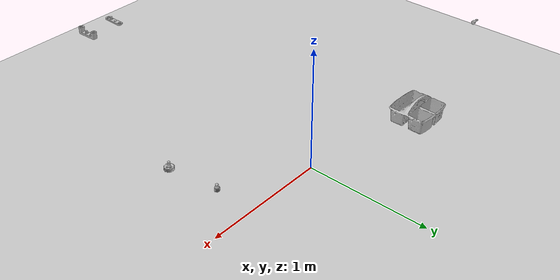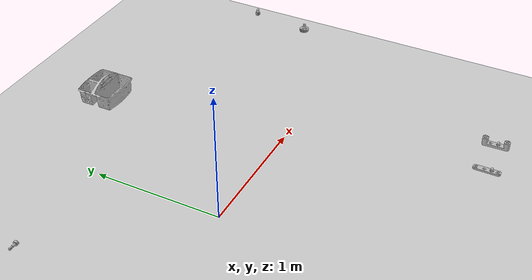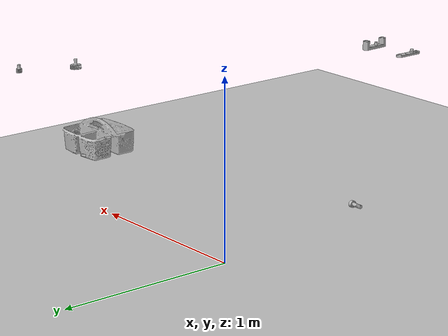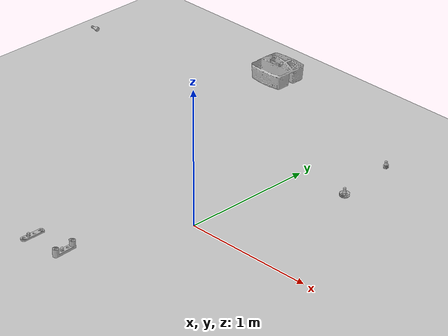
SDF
<sdf version="1.4">
 <world name="default">
  <model name="kit">
   <pose>-0.033010 0.804048 0.857000 0 0 0.01666</pose>
   <link name="link">
    <inertial>
     <mass>0.1</mass>
     <inertia><ixx>0.01</ixx><ixy>0</ixy><ixz>0</ixz><iyy>0.01</iyy><iyz>0</iyz><izz>0.01</izz></inertia>
    </inertial>
    <collision name="collision">
     <pose>0 0 -0.08 0 0 0</pose>
     <geometry><box><size>0.22 0.22 0.005</size></box></geometry>
     <surface>
      <friction><ode><mu>50.0</mu><mu2>50.0</mu2></ode></friction>
      <contact>
       <ode><kp>1000000.0</kp><kd>100.0</kd><max_vel>1.0</max_vel><min_depth>0.0005</min_depth></ode>
      </contact>
     </surface>
    </collision>
    <visual name="visual"><geometry><mesh><uri>model://Fetch_kit/meshes/kit7.stl</uri></mesh></geometry></visual>
   </link>
  </model>
  <include><uri>model://ground_plane</uri></include>
  <include><uri>model://sun</uri></include>
  <model name="gear_box_bottom">
   <pose>0.62 -1.64 0.797500 -1.570796 0 0.043728</pose>
   <link name="link">
    <inertial>
     <mass>0.1</mass>
     <inertia><ixx>0.01</ixx><ixy>0</ixy><ixz>0</ixz><iyy>0.01</iyy><iyz>0</iyz><izz>0.01</izz></inertia>
    </inertial>
    <collision name="collision">
     <geometry><box><size>0.035 0.046 0.18</size></box></geometry>
     <surface>
      <friction><ode><mu>50.0</mu><mu2>50.0</mu2></ode></friction>
      <contact>
       <ode><kp>1000000.0</kp><kd>100.0</kd><max_vel>1.0</max_vel><min_depth>0.0005</min_depth></ode>
      </contact>
     </surface>
    </collision>
    <visual name="visual">
     <geometry><mesh><uri>model://gearBox/meshes/gearBoxBottom_v3.stl</uri></mesh></geometry>
    </visual>
   </link>
  </model>
  <model name="gear_box_top">
   <pose>0.36 -1.66 0.792000 0 0 -1.57</pose>
   <link name="link">
    <inertial>
     <mass>0.1</mass>
     <inertia><ixx>0.01</ixx><ixy>0</ixy><ixz>0</ixz><iyy>0.01</iyy><iyz>0</iyz><izz>0.01</izz></inertia>
    </inertial>
    <collision name="collision">
     <pose>0 0 -0.01 0 0 0</pose>
     <geometry><box><size>0.18 0.046 0.015</size></box></geometry>
     <surface>
      <friction><ode><mu>50.0</mu><mu2>50.0</mu2></ode></friction>
      <contact>
       <ode><kp>1000000.0</kp><kd>100.0</kd><max_vel>1.0</max_vel><min_depth>0.0005</min_depth></ode>
      </contact>
     </surface>
    </collision>
    <visual name="visual">
     <geometry><mesh><uri>model://gearboxtop/meshes/gearBoxTop_v1.stl</uri></mesh></geometry>
    </visual>
   </link>
  </model>
  <model name="large_gear">
   <pose>1.32 0 0.803773 -0.003354 -0.002926 -0.850318</pose>
   <link name="link">
    <inertial>
     <mass>0.1</mass>
     <inertia><ixx>0.01</ixx><ixy>0</ixy><ixz>0</ixz><iyy>0.01</iyy><iyz>0</iyz><izz>0.01</izz></inertia>
    </inertial>
    <collision name="collision">
     <geometry><cylinder><radius>0.03</radius><length>0.058</length></cylinder></geometry>
     <surface>
      <friction><ode><mu>50.0</mu><mu2>50.0</mu2></ode></friction>
      <contact>
       <ode><kp>1000000.0</kp><kd>100.0</kd><max_vel>1.0</max_vel><min_depth>0.0005</min_depth></ode>
      </contact>
     </surface>
    </collision>
    <visual name="visual">
     <geometry><mesh><uri>model://large_gear/meshes/largeGear_v2.stl</uri></mesh></geometry>
    </visual>
   </link>
  </model>
  <model name="small_gear">
   <pose>1.31 0.38 0.84 -0.006217 -0.005827 -0.000268</pose>
   <link name="link">
    <inertial>
     <mass>0.1</mass>
     <inertia><ixx>0.01</ixx><ixy>0</ixy><ixz>0</ixz><iyy>0.01</iyy><iyz>0</iyz><izz>0.01</izz></inertia>
    </inertial>
    <collision name="collision">
     <geometry><cylinder><radius>0.015</radius><length>0.04</length></cylinder></geometry>
     <surface>
      <friction><ode><mu>50.0</mu><mu2>50.0</mu2></ode></friction>
      <contact>
       <ode><kp>1000000.0</kp><kd>100.0</kd><max_vel>1.0</max_vel><min_depth>0.0005</min_depth></ode>
      </contact>
     </surface>
    </collision>
    <visual name="visual">
     <geometry><mesh><uri>model://small_gear/meshes/smallGear_v1.stl</uri></mesh></geometry>
    </visual>
   </link>
  </model>
  <model name="screw">
   <pose>-1.42 0.43 0.7905 1.570791 -1.462967 -1.5707</pose>
   <link name="link">
    <inertial>
     <mass>0.1</mass>
     <inertia><ixx>0.01</ixx><ixy>0</ixy><ixz>0</ixz><iyy>0.01</iyy><iyz>0</iyz><izz>0.01</izz></inertia>
    </inertial>
    <collision name="collision">
     <geometry><cylinder><radius>0.016</radius><length>0.06</length></cylinder></geometry>
     <surface>
      <friction><ode><mu>50.0</mu><mu2>50.0</mu2></ode></friction>
      <contact>
       <ode><kp>1000000.0</kp><kd>100.0</kd><max_vel>1.0</max_vel><min_depth>0.0005</min_depth></ode>
      </contact>
     </surface>
    </collision>
    <visual name="visual"><geometry><mesh><uri>model://screw/meshes/screw_v1.stl</uri></mesh></geometry></visual>
   </link>
  </model>
  <physics type="ode">
   <real_time_update_rate>1000.0</real_time_update_rate>
   <gravity>0.0 0.0 -9.81</gravity>
  </physics>
 </world>
</sdf>
